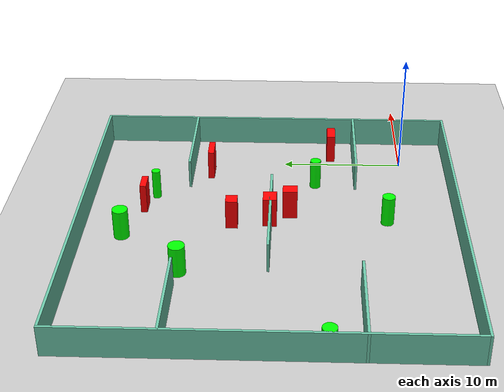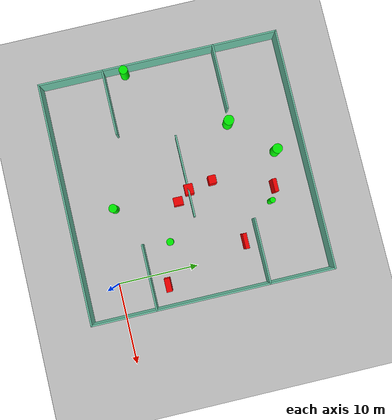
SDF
<sdf version="1.7">
 <world name="default">
  <light name="sun" type="directional">
   <pose>0 0 10 0 -0 0</pose>
   <diffuse>0.8 0.8 0.8 1</diffuse>
   <specular>0.2 0.2 0.2 1</specular>
   <attenuation>
    <range>1000</range>
    <constant>0.9</constant>
    <linear>0.01</linear>
    <quadratic>0.001</quadratic>
   </attenuation>
   <direction>-0.5 0.1 -0.9</direction>
   <spot><inner_angle>0</inner_angle><outer_angle>0</outer_angle><falloff>0</falloff></spot>
  </light>
  <model name="ground_plane">
   <static>1</static>
   <link name="link">
    <collision name="collision">
     <geometry><plane><normal>0 0 1</normal><size>100 100</size></plane></geometry>
     <surface>
      <contact><collide_bitmask>65535</collide_bitmask></contact>
      <friction><ode><mu>100</mu><mu2>50</mu2></ode></friction>
     </surface>
    </collision>
    <visual name="visual">
     <cast_shadows>0</cast_shadows>
     <geometry><plane><normal>0 0 1</normal><size>100 100</size></plane></geometry>
     <material>
      <script><uri>file://media/materials/scripts/gazebo.material</uri><name>Gazebo/Grey</name></script>
     </material>
    </visual>
   </link>
  </model>
  <gravity>0 0 -9.8</gravity>
  <magnetic_field>6e-06 2.3e-05 -4.2e-05</magnetic_field>
  <atmosphere type="adiabatic"/>
  <physics type="ode">
   <max_step_size>0.001</max_step_size>
   <real_time_factor>1</real_time_factor>
   <real_time_update_rate>1000</real_time_update_rate>
  </physics>
  <scene><ambient>0.4 0.4 0.4 1</ambient><background>0.7 0.7 0.7 1</background><shadows>1</shadows></scene>
  <spherical_coordinates>
   <surface_model>EARTH_WGS84</surface_model>
   <latitude_deg>0</latitude_deg>
   <longitude_deg>0</longitude_deg>
   <elevation>0</elevation>
   <heading_deg>0</heading_deg>
  </spherical_coordinates>
  <model name="my_base_walls">
   <link name="Wall_10">
    <collision name="Wall_10_Collision">
     <geometry><box><size>8.2 0.2 2.5</size></box></geometry>
     <pose>0 0 1.25 0 -0 0</pose>
    </collision>
    <visual name="Wall_10_Visual">
     <pose>0 0 1.25 0 -0 0</pose>
     <geometry><box><size>8.2 0.2 2.5</size></box></geometry>
     <material>
      <script><uri>file://media/materials/scripts/gazebo.material</uri><name>Gazebo/Grey</name></script>
      <ambient>0.435294 0.796078 0.67451 1</ambient>
     </material>
     <meta><layer>0</layer></meta>
    </visual>
    <pose>-11 -7 0 0 -0 0</pose>
   </link>
   <link name="Wall_12">
    <collision name="Wall_12_Collision">
     <geometry><box><size>8.2 0.2 2.5</size></box></geometry>
     <pose>0 0 1.25 0 -0 0</pose>
    </collision>
    <visual name="Wall_12_Visual">
     <pose>0 0 1.25 0 -0 0</pose>
     <geometry><box><size>8.2 0.2 2.5</size></box></geometry>
     <material>
      <script><uri>file://media/materials/scripts/gazebo.material</uri><name>Gazebo/Grey</name></script>
      <ambient>0.435294 0.796078 0.67451 1</ambient>
     </material>
     <meta><layer>0</layer></meta>
    </visual>
    <pose>-11 7 0 0 -0 0</pose>
   </link>
   <link name="Wall_14">
    <collision name="Wall_14_Collision">
     <geometry><box><size>8.2 0.2 2.5</size></box></geometry>
     <pose>0 0 1.25 0 -0 0</pose>
    </collision>
    <visual name="Wall_14_Visual">
     <pose>0 0 1.25 0 -0 0</pose>
     <geometry><box><size>8.2 0.2 2.5</size></box></geometry>
     <material>
      <script><uri>file://media/materials/scripts/gazebo.material</uri><name>Gazebo/Grey</name></script>
      <ambient>0.435294 0.796078 0.67451 1</ambient>
     </material>
     <meta><layer>0</layer></meta>
    </visual>
    <pose>11 7 0 0 -0 3.14159</pose>
   </link>
   <link name="Wall_16">
    <collision name="Wall_16_Collision">
     <geometry><box><size>10.2 0.2 2.5</size></box></geometry>
     <pose>0 0 1.25 0 -0 0</pose>
    </collision>
    <visual name="Wall_16_Visual">
     <pose>0 0 1.25 0 -0 0</pose>
     <geometry><box><size>10.2 0.2 2.5</size></box></geometry>
     <material>
      <script><uri>file://media/materials/scripts/gazebo.material</uri><name>Gazebo/Grey</name></script>
      <ambient>0.435294 0.796078 0.67451 1</ambient>
     </material>
     <meta><layer>0</layer></meta>
    </visual>
    <pose>0 0 0 0 -0 3.14159</pose>
   </link>
   <link name="Wall_2">
    <collision name="Wall_2_Collision">
     <geometry><box><size>30.2 0.2 2.5</size></box></geometry>
     <pose>0 0 1.25 0 -0 0</pose>
    </collision>
    <visual name="Wall_2_Visual">
     <pose>0 0 1.25 0 -0 0</pose>
     <geometry><box><size>30.2 0.2 2.5</size></box></geometry>
     <material>
      <script><uri>file://media/materials/scripts/gazebo.material</uri><name>Gazebo/Grey</name></script>
      <ambient>0.435294 0.796078 0.67451 1</ambient>
     </material>
     <meta><layer>0</layer></meta>
    </visual>
    <pose>0 -15 0 0 -0 3.14159</pose>
   </link>
   <link name="Wall_3">
    <collision name="Wall_3_Collision">
     <geometry><box><size>30.2 0.2 2.5</size></box></geometry>
     <pose>0 0 1.25 0 -0 0</pose>
    </collision>
    <visual name="Wall_3_Visual">
     <pose>0 0 1.25 0 -0 0</pose>
     <geometry><box><size>30.2 0.2 2.5</size></box></geometry>
     <material>
      <script><uri>file://media/materials/scripts/gazebo.material</uri><name>Gazebo/Grey</name></script>
      <ambient>0.435294 0.796078 0.67451 1</ambient>
     </material>
     <meta><layer>0</layer></meta>
    </visual>
    <pose>-15 0 0 0 -0 1.5708</pose>
   </link>
   <link name="Wall_4">
    <collision name="Wall_4_Collision">
     <geometry><box><size>30.2 0.2 2.5</size></box></geometry>
     <pose>0 0 1.25 0 -0 0</pose>
    </collision>
    <visual name="Wall_4_Visual">
     <pose>0 0 1.25 0 -0 0</pose>
     <geometry><box><size>30.2 0.2 2.5</size></box></geometry>
     <material>
      <script><uri>file://media/materials/scripts/gazebo.material</uri><name>Gazebo/Grey</name></script>
      <ambient>0.435294 0.796078 0.67451 1</ambient>
     </material>
     <meta><layer>0</layer></meta>
    </visual>
    <pose>0 15 0 0 -0 0</pose>
   </link>
   <link name="Wall_6">
    <collision name="Wall_6_Collision">
     <geometry><box><size>30.2 0.2 2.5</size></box></geometry>
     <pose>0 0 1.25 0 -0 0</pose>
    </collision>
    <visual name="Wall_6_Visual">
     <pose>0 0 1.25 0 -0 0</pose>
     <geometry><box><size>30.2 0.2 2.5</size></box></geometry>
     <material>
      <script><uri>file://media/materials/scripts/gazebo.material</uri><name>Gazebo/Grey</name></script>
      <ambient>0.435294 0.796078 0.67451 1</ambient>
     </material>
     <meta><layer>0</layer></meta>
    </visual>
    <pose>15 0 0 0 -0 1.5708</pose>
   </link>
   <link name="Wall_8">
    <collision name="Wall_8_Collision">
     <geometry><box><size>8.2 0.2 2.5</size></box></geometry>
     <pose>0 0 1.25 0 -0 0</pose>
    </collision>
    <visual name="Wall_8_Visual">
     <pose>0 0 1.25 0 -0 0</pose>
     <geometry><box><size>8.2 0.2 2.5</size></box></geometry>
     <material>
      <script><uri>file://media/materials/scripts/gazebo.material</uri><name>Gazebo/Grey</name></script>
      <ambient>0.435294 0.796078 0.67451 1</ambient>
     </material>
     <meta><layer>0</layer></meta>
    </visual>
    <pose>11 -7 0 0 -0 3.14159</pose>
   </link>
   <static>1</static>
   <pose>-11 11 0 0 -0 0</pose>
  </model>
  <model name="cylinder1">
   <static>1</static>
   <link name="link">
    <inertial>
     <mass>1</mass>
     <inertia><ixx>0.5</ixx><ixy>0</ixy><ixz>0</ixz><iyy>0.5</iyy><iyz>0</iyz><izz>1</izz></inertia>
    </inertial>
    <collision name="collision">
     <geometry><cylinder><radius>0.5437062252663662</radius><length>2.5</length></cylinder></geometry>
    </collision>
    <visual name="visual">
     <geometry><cylinder><radius>0.5437062252663662</radius><length>2.5</length></cylinder></geometry>
     <material>
      <ambient>0 1 0 1</ambient>
      <diffuse>0 1 0 1</diffuse>
      <specular>0.1 0.1 0.1 1</specular>
      <emissive>0 0 0 0</emissive>
     </material>
    </visual>
   </link>
   <pose>-25.50665787646332 6.568509615171564 1.25 0 0 0</pose>
  </model>
  <model name="cylinder2">
   <static>1</static>
   <link name="link">
    <inertial>
     <mass>1</mass>
     <inertia><ixx>0.5</ixx><ixy>0</ixy><ixz>0</ixz><iyy>0.5</iyy><iyz>0</iyz><izz>1</izz></inertia>
    </inertial>
    <collision name="collision">
     <geometry><cylinder><radius>0.6204859757382196</radius><length>2.5</length></cylinder></geometry>
    </collision>
    <visual name="visual">
     <geometry><cylinder><radius>0.6204859757382196</radius><length>2.5</length></cylinder></geometry>
     <material>
      <ambient>0 1 0 1</ambient>
      <diffuse>0 1 0 1</diffuse>
      <specular>0.1 0.1 0.1 1</specular>
      <emissive>0 0 0 0</emissive>
     </material>
    </visual>
   </link>
   <pose>-11.668279608963525 22.72930392865142 1.25 0 0 0</pose>
  </model>
  <model name="cylinder3">
   <static>1</static>
   <link name="link">
    <inertial>
     <mass>1</mass>
     <inertia><ixx>0.5</ixx><ixy>0</ixy><ixz>0</ixz><iyy>0.5</iyy><iyz>0</iyz><izz>1</izz></inertia>
    </inertial>
    <collision name="collision">
     <geometry><cylinder><radius>0.3449945986332341</radius><length>2.5</length></cylinder></geometry>
    </collision>
    <visual name="visual">
     <geometry><cylinder><radius>0.3449945986332341</radius><length>2.5</length></cylinder></geometry>
     <material>
      <ambient>0 1 0 1</ambient>
      <diffuse>0 1 0 1</diffuse>
      <specular>0.1 0.1 0.1 1</specular>
      <emissive>0 0 0 0</emissive>
     </material>
    </visual>
   </link>
   <pose>-5.6849416710376985 20.646633234610352 1.25 0 0 0</pose>
  </model>
  <model name="cylinder4">
   <static>1</static>
   <link name="link">
    <inertial>
     <mass>1</mass>
     <inertia><ixx>0.5</ixx><ixy>0</ixy><ixz>0</ixz><iyy>0.5</iyy><iyz>0</iyz><izz>1</izz></inertia>
    </inertial>
    <collision name="collision">
     <geometry><cylinder><radius>0.5194014433973012</radius><length>2.5</length></cylinder></geometry>
    </collision>
    <visual name="visual">
     <geometry><cylinder><radius>0.5194014433973012</radius><length>2.5</length></cylinder></geometry>
     <material>
      <ambient>0 1 0 1</ambient>
      <diffuse>0 1 0 1</diffuse>
      <specular>0.1 0.1 0.1 1</specular>
      <emissive>0 0 0 0</emissive>
     </material>
    </visual>
   </link>
   <pose>-9.125025158213024 1.5793720788325363 1.25 0 0 0</pose>
  </model>
  <model name="cylinder5">
   <static>1</static>
   <link name="link">
    <inertial>
     <mass>1</mass>
     <inertia><ixx>0.5</ixx><ixy>0</ixy><ixz>0</ixz><iyy>0.5</iyy><iyz>0</iyz><izz>1</izz></inertia>
    </inertial>
    <collision name="collision">
     <geometry><cylinder><radius>0.4435415932467497</radius><length>2.5</length></cylinder></geometry>
    </collision>
    <visual name="visual">
     <geometry><cylinder><radius>0.4435415932467497</radius><length>2.5</length></cylinder></geometry>
     <material>
      <ambient>0 1 0 1</ambient>
      <diffuse>0 1 0 1</diffuse>
      <specular>0.1 0.1 0.1 1</specular>
      <emissive>0 0 0 0</emissive>
     </material>
    </visual>
   </link>
   <pose>-3.6092509781004516 7.386141429439505 1.25 0 0 0</pose>
  </model>
  <model name="cylinder6">
   <static>1</static>
   <link name="link">
    <inertial>
     <mass>1</mass>
     <inertia><ixx>0.5</ixx><ixy>0</ixy><ixz>0</ixz><iyy>0.5</iyy><iyz>0</iyz><izz>1</izz></inertia>
    </inertial>
    <collision name="collision">
     <geometry><cylinder><radius>0.6406282544405076</radius><length>2.5</length></cylinder></geometry>
    </collision>
    <visual name="visual">
     <geometry><cylinder><radius>0.6406282544405076</radius><length>2.5</length></cylinder></geometry>
     <material>
      <ambient>0 1 0 1</ambient>
      <diffuse>0 1 0 1</diffuse>
      <specular>0.1 0.1 0.1 1</specular>
      <emissive>0 0 0 0</emissive>
     </material>
    </visual>
   </link>
   <pose>-16.42347050393328 17.773162702236313 1.25 0 0 0</pose>
  </model>
  <model name="box1">
   <static>1</static>
   <link name="link">
    <inertial>
     <mass>1</mass>
     <inertia><ixx>0.083</ixx><ixy>0</ixy><ixz>0</ixz><iyy>0.083</iyy><iyz>0</iyz><izz>0.083</izz></inertia>
    </inertial>
    <collision name="collision">
     <geometry><box><size>1.0288901000545823 0.9468392159173273 2.5</size></box></geometry>
    </collision>
    <visual name="visual">
     <geometry><box><size>1.0288901000545823 0.9468392159173273 2.5</size></box></geometry>
     <material>
      <ambient>1 0 0 1</ambient>
      <diffuse>1 0 0 1</diffuse>
      <specular>0.1 0.1 0.1 1</specular>
      <emissive>0 0 0 0</emissive>
     </material>
    </visual>
    <sensor name="my_contact" type="contact">
     <contact><collision>box_collision</collision><topic>__default_topic__</topic></contact>
    </sensor>
   </link>
   <pose>-9.807333196203139 14.105072664370304 1.25 0 0 0</pose>
  </model>
  <model name="box2">
   <static>1</static>
   <link name="link">
    <inertial>
     <mass>1</mass>
     <inertia><ixx>0.083</ixx><ixy>0</ixy><ixz>0</ixz><iyy>0.083</iyy><iyz>0</iyz><izz>0.083</izz></inertia>
    </inertial>
    <collision name="collision">
     <geometry><box><size>1.634888512068934 0.7048380840031966 2.5</size></box></geometry>
    </collision>
    <visual name="visual">
     <geometry><box><size>1.634888512068934 0.7048380840031966 2.5</size></box></geometry>
     <material>
      <ambient>1 0 0 1</ambient>
      <diffuse>1 0 0 1</diffuse>
      <specular>0.1 0.1 0.1 1</specular>
      <emissive>0 0 0 0</emissive>
     </material>
    </visual>
    <sensor name="my_contact" type="contact">
     <contact><collision>box_collision</collision><topic>__default_topic__</topic></contact>
    </sensor>
   </link>
   <pose>1.3932071277052458 5.996941797624679 1.25 0 0 0</pose>
  </model>
  <model name="box3">
   <static>1</static>
   <link name="link">
    <inertial>
     <mass>1</mass>
     <inertia><ixx>0.083</ixx><ixy>0</ixy><ixz>0</ixz><iyy>0.083</iyy><iyz>0</iyz><izz>0.083</izz></inertia>
    </inertial>
    <collision name="collision">
     <geometry><box><size>1.2732236586656311 1.094507027223245 2.5</size></box></geometry>
    </collision>
    <visual name="visual">
     <geometry><box><size>1.2732236586656311 1.094507027223245 2.5</size></box></geometry>
     <material>
      <ambient>1 0 0 1</ambient>
      <diffuse>1 0 0 1</diffuse>
      <specular>0.1 0.1 0.1 1</specular>
      <emissive>0 0 0 0</emissive>
     </material>
    </visual>
    <sensor name="my_contact" type="contact">
     <contact><collision>box_collision</collision><topic>__default_topic__</topic></contact>
    </sensor>
   </link>
   <pose>-9.306623251767157 11.064853176649837 1.25 0 0 0</pose>
  </model>
  <model name="box4">
   <static>1</static>
   <link name="link">
    <inertial>
     <mass>1</mass>
     <inertia><ixx>0.083</ixx><ixy>0</ixy><ixz>0</ixz><iyy>0.083</iyy><iyz>0</iyz><izz>0.083</izz></inertia>
    </inertial>
    <collision name="collision">
     <geometry><box><size>1.9000535412878872 0.5118107687376677 2.5</size></box></geometry>
    </collision>
    <visual name="visual">
     <geometry><box><size>1.9000535412878872 0.5118107687376677 2.5</size></box></geometry>
     <material>
      <ambient>1 0 0 1</ambient>
      <diffuse>1 0 0 1</diffuse>
      <specular>0.1 0.1 0.1 1</specular>
      <emissive>0 0 0 0</emissive>
     </material>
    </visual>
    <sensor name="my_contact" type="contact">
     <contact><collision>box_collision</collision><topic>__default_topic__</topic></contact>
    </sensor>
   </link>
   <pose>-1.6179483322270265 16.33188576536403 1.25 0 0 0</pose>
  </model>
  <model name="box5">
   <static>1</static>
   <link name="link">
    <inertial>
     <mass>1</mass>
     <inertia><ixx>0.083</ixx><ixy>0</ixy><ixz>0</ixz><iyy>0.083</iyy><iyz>0</iyz><izz>0.083</izz></inertia>
    </inertial>
    <collision name="collision">
     <geometry><box><size>1.633803667308942 0.5138863419714638 2.5</size></box></geometry>
    </collision>
    <visual name="visual">
     <geometry><box><size>1.633803667308942 0.5138863419714638 2.5</size></box></geometry>
     <material>
      <ambient>1 0 0 1</ambient>
      <diffuse>1 0 0 1</diffuse>
      <specular>0.1 0.1 0.1 1</specular>
      <emissive>0 0 0 0</emissive>
     </material>
    </visual>
    <sensor name="my_contact" type="contact">
     <contact><collision>box_collision</collision><topic>__default_topic__</topic></contact>
    </sensor>
   </link>
   <pose>-7.388102097616988 21.405247459578668 1.25 0 0 0</pose>
  </model>
  <model name="box6">
   <static>1</static>
   <link name="link">
    <inertial>
     <mass>1</mass>
     <inertia><ixx>0.083</ixx><ixy>0</ixy><ixz>0</ixz><iyy>0.083</iyy><iyz>0</iyz><izz>0.083</izz></inertia>
    </inertial>
    <collision name="collision">
     <geometry><box><size>0.9997712772044498 1.1874478936515085 2.5</size></box></geometry>
    </collision>
    <visual name="visual">
     <geometry><box><size>0.9997712772044498 1.1874478936515085 2.5</size></box></geometry>
     <material>
      <ambient>1 0 0 1</ambient>
      <diffuse>1 0 0 1</diffuse>
      <specular>0.1 0.1 0.1 1</specular>
      <emissive>0 0 0 0</emissive>
     </material>
    </visual>
    <sensor name="my_contact" type="contact">
     <contact><collision>box_collision</collision><topic>__default_topic__</topic></contact>
    </sensor>
   </link>
   <pose>-8.184941640608358 9.463505559462172 1.25 0 0 0</pose>
  </model>
 </world>
</sdf>
